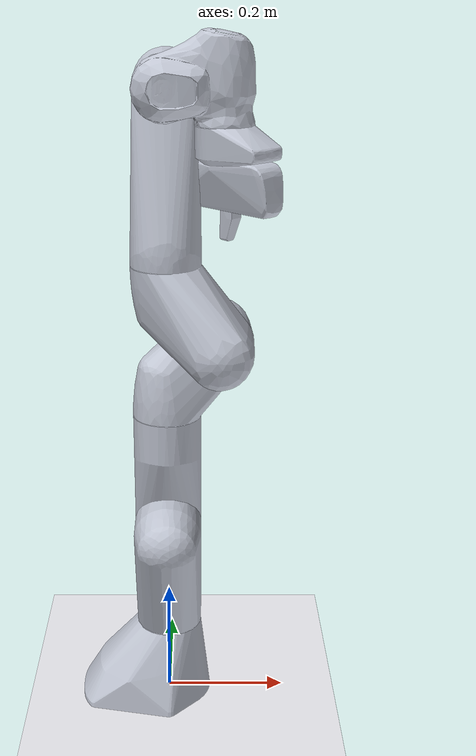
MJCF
<?xml version='1.0' encoding='utf-8'?>
<mujoco model="franka_stage1_playback"><compiler angle="radian" autolimits="true" balanceinertia="true" /><option timestep="0.002" gravity="0 0 -9.81" /><visual><global offwidth="1280" offheight="960" /></visual><asset><mesh name="finger_mesh" file="/home/jetson/tashan/tashan_robot/readCaohy/third_party/curobo/curobo/content/assets/robot/franka_description/meshes/collision/finger.obj" scale="1 1 1" /><mesh name="hand_mesh" file="/home/jetson/tashan/tashan_robot/readCaohy/third_party/curobo/curobo/content/assets/robot/franka_description/meshes/collision/hand.obj" scale="1 1 1" /><mesh name="link0_mesh" file="/home/jetson/tashan/tashan_robot/readCaohy/third_party/curobo/curobo/content/assets/robot/franka_description/meshes/collision/link0.obj" scale="1 1 1" /><mesh name="link1_mesh" file="/home/jetson/tashan/tashan_robot/readCaohy/third_party/curobo/curobo/content/assets/robot/franka_description/meshes/collision/link1.obj" scale="1 1 1" /><mesh name="link2_mesh" file="/home/jetson/tashan/tashan_robot/readCaohy/third_party/curobo/curobo/content/assets/robot/franka_description/meshes/collision/link2.obj" scale="1 1 1" /><mesh name="link3_mesh" file="/home/jetson/tashan/tashan_robot/readCaohy/third_party/curobo/curobo/content/assets/robot/franka_description/meshes/collision/link3.obj" scale="1 1 1" /><mesh name="link4_mesh" file="/home/jetson/tashan/tashan_robot/readCaohy/third_party/curobo/curobo/content/assets/robot/franka_description/meshes/collision/link4.obj" scale="1 1 1" /><mesh name="link5_mesh" file="/home/jetson/tashan/tashan_robot/readCaohy/third_party/curobo/curobo/content/assets/robot/franka_description/meshes/collision/link5.obj" scale="1 1 1" /><mesh name="link6_mesh" file="/home/jetson/tashan/tashan_robot/readCaohy/third_party/curobo/curobo/content/assets/robot/franka_description/meshes/collision/link6.obj" scale="1 1 1" /><mesh name="link7_mesh" file="/home/jetson/tashan/tashan_robot/readCaohy/third_party/curobo/curobo/content/assets/robot/franka_description/meshes/collision/link7.obj" scale="1 1 1" /></asset><worldbody><light pos="1.5 0 2.5" dir="-1 0 -1" /><geom name="ground" type="plane" size="2 2 0.1" rgba="0.94 0.94 0.96 1" /><body name="base_link" pos="0 0 0"><inertial pos="0 0 0" mass="0.1" diaginertia="0.001 0.001 0.001" /><body name="panda_link0" pos="0 0 0" euler="0 0 0"><inertial pos="0 0 0" mass="2.3966" diaginertia="1e-06 0.0115 0.0085" /><geom name="panda_link0_link0_geom" type="mesh" mesh="link0_mesh" rgba="0.77 0.79 0.84 1" contype="0" conaffinity="0" group="1" /><body name="panda_link1" pos="0 0 0.333" euler="0 0 0"><inertial pos="0 0 0" mass="2.797" diaginertia="0.0156 0.01439 0.005" /><joint name="panda_joint1" type="hinge" axis="0 0 1" damping="10" range="-2.8973 2.8973" /><geom name="panda_link1_link1_geom" type="mesh" mesh="link1_mesh" rgba="0.77 0.79 0.84 1" contype="0" conaffinity="0" group="1" /><body name="panda_link2" pos="0 0 0" euler="-1.57079633 0 0"><inertial pos="0 0 0" mass="2.542" diaginertia="0.0166 0.0046 0.015" /><joint name="panda_joint2" type="hinge" axis="0 0 1" damping="10" range="-1.7628 1.7628" /><geom name="panda_link2_link2_geom" type="mesh" mesh="link2_mesh" rgba="0.77 0.79 0.84 1" contype="0" conaffinity="0" group="1" /><body name="panda_link3" pos="0 -0.316 0" euler="1.57079633 0 0"><inertial pos="0 0 0" mass="2.2513" diaginertia="0.006 0.0086 0.0065" /><joint name="panda_joint3" type="hinge" axis="0 0 1" damping="10" range="-2.8973 2.8973" /><geom name="panda_link3_link3_geom" type="mesh" mesh="link3_mesh" rgba="0.77 0.79 0.84 1" contype="0" conaffinity="0" group="1" /><body name="panda_link4" pos="0.0825 0 0" euler="1.57079633 0 0"><inertial pos="0 0 0" mass="2.2037" diaginertia="0.0156 0.01439 0.005" /><joint name="panda_joint4" type="hinge" axis="0 0 1" damping="10" range="-3.0718 -0.0698" /><geom name="panda_link4_link4_geom" type="mesh" mesh="link4_mesh" rgba="0.77 0.79 0.84 1" contype="0" conaffinity="0" group="1" /><body name="panda_link5" pos="-0.0825 0.384 0" euler="-1.57079633 0 0"><inertial pos="0 0 0" mass="2.2855" diaginertia="0.0229701478 0.0209506092 0.00430606551" /><joint name="panda_joint5" type="hinge" axis="0 0 1" damping="10" range="-2.8973 2.8973" /><geom name="panda_link5_link5_geom" type="mesh" mesh="link5_mesh" rgba="0.77 0.79 0.84 1" contype="0" conaffinity="0" group="1" /><body name="panda_link6" pos="0 0 0" euler="1.57079633 0 0"><inertial pos="0 0 0" mass="1.353" diaginertia="0.00087964522 0.00277796968 0.00286701969" /><joint name="panda_joint6" type="hinge" axis="0 0 1" damping="10" range="-0.0175 3.7525" /><geom name="panda_link6_link6_geom" type="mesh" mesh="link6_mesh" rgba="0.77 0.79 0.84 1" contype="0" conaffinity="0" group="1" /><body name="panda_link7" pos="0.088 0 0" euler="1.57079633 0 0"><inertial pos="0 0 0" mass="0.35973" diaginertia="0.00019541063 0.00019210361 0.00017936256" /><joint name="panda_joint7" type="hinge" axis="0 0 1" damping="10" range="-2.8973 2.8973" /><geom name="panda_link7_link7_geom" type="mesh" mesh="link7_mesh" rgba="0.77 0.79 0.84 1" contype="0" conaffinity="0" group="1" /><body name="panda_link8" pos="0 0 0.107" euler="0 0 0"><inertial pos="0 0 0" mass="0.1" diaginertia="0.001 0.001 0.001" /><body name="panda_hand" pos="0 0 0" euler="0 0 -0.785398163"><inertial pos="0 0 0" mass="1" diaginertia="0.00019541063 0.00019210361 0.00017936256" /><geom name="panda_hand_hand_geom" type="mesh" mesh="hand_mesh" rgba="0.77 0.79 0.84 1" contype="0" conaffinity="0" group="1" /><site name="panda_hand_site" pos="0 0 0" size="0.012" rgba="1 0.2 0.2 1" /><body name="panda_leftfinger" pos="0 0 0.0584" euler="0 0 0"><inertial pos="0 0 0" mass="0.1" diaginertia="0.001 0.001 0.001" /><joint name="panda_finger_joint1" type="slide" axis="0 1 0" damping="10" range="0 0.04" /><geom name="panda_leftfinger_finger_geom" type="mesh" mesh="finger_mesh" rgba="0.77 0.79 0.84 1" contype="0" conaffinity="0" group="1" /></body><body name="panda_rightfinger" pos="0 0 0.0584" euler="0 0 0"><inertial pos="0 0 0" mass="0.1" diaginertia="0.001 0.001 0.001" /><joint name="panda_finger_joint2" type="slide" axis="0 -1 0" damping="10" range="0 0.04" /><geom name="panda_rightfinger_finger_geom" type="mesh" mesh="finger_mesh" rgba="0.77 0.79 0.84 1" contype="0" conaffinity="0" group="1" /></body><body name="ee_link" pos="0 0 0.1" euler="0 0 0"><inertial pos="0 0 0" mass="0.1" diaginertia="0.001 0.001 0.001" /></body></body></body><body name="right_gripper" pos="0 0 0.207" euler="0 0 2.35619449"><inertial pos="0 0 0" mass="0.01" diaginertia="0.0001 0.0001 0.0001" /></body></body></body></body></body></body></body></body></body></body></worldbody></mujoco>
